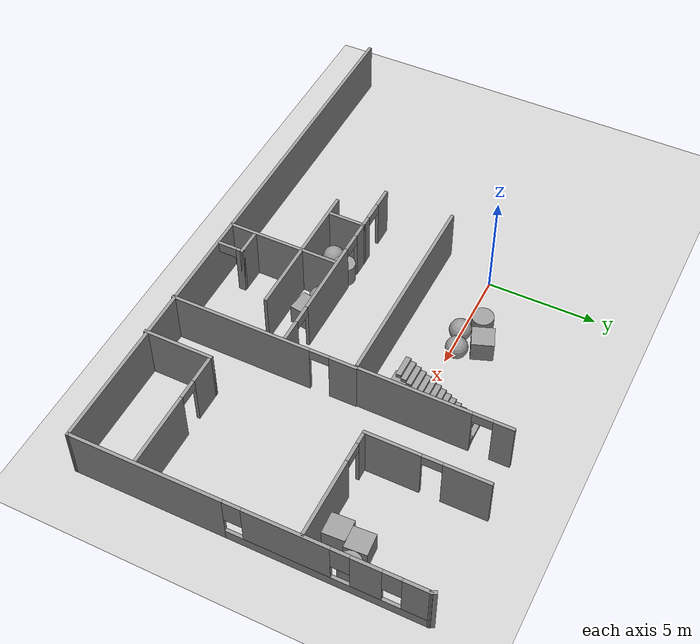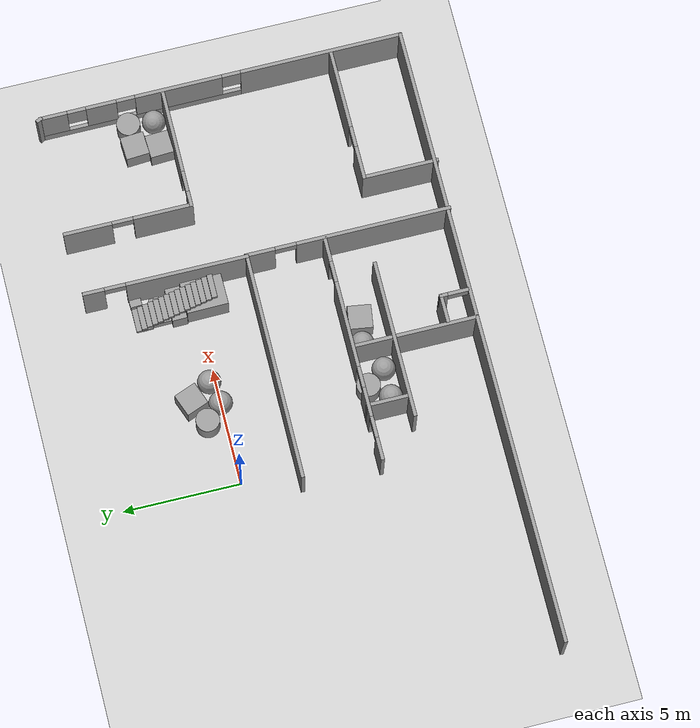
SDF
<sdf version="1.7">
 <world name="default">
  <model name="ground_plane">
   <static>1</static>
   <link name="link">
    <collision name="collision">
     <geometry><plane><normal>0 0 1</normal><size>100 100</size></plane></geometry>
     <surface>
      <contact><collide_bitmask>65535</collide_bitmask></contact>
      <friction><ode><mu>100</mu><mu2>50</mu2></ode></friction>
     </surface>
    </collision>
    <visual name="visual">
     <cast_shadows>0</cast_shadows>
     <geometry><plane><normal>0 0 1</normal><size>100 100</size></plane></geometry>
     <material>
      <script><uri>file://media/materials/scripts/gazebo.material</uri><name>Gazebo/Grey</name></script>
     </material>
    </visual>
   </link>
  </model>
  <model name="Dundler_mifflin">
   <pose>0.014796 -3.72139 0 0 -0 0</pose>
   <link name="Stairs_1">
    <visual name="Stairs_1_Visual_0">
     <pose>7.80793 6.29097 0.083333 0 -0 0</pose>
     <geometry><box><size>1 0.233333 0.166667</size></box></geometry>
     <material>
      <script><uri>file://media/materials/scripts/gazebo.material</uri><name>Gazebo/Grey</name></script>
      <ambient>1 1 1 1</ambient>
     </material>
     <meta><layer>0</layer></meta>
    </visual>
    <collision name="Stairs_1_Collision_0">
     <geometry><box><size>1 0.233333 0.166667</size></box></geometry>
     <pose>7.80793 6.29097 0.083333 0 -0 0</pose>
    </collision>
    <visual name="Stairs_1_Visual_1">
     <pose>7.80793 6.05764 0.25 0 -0 0</pose>
     <geometry><box><size>1 0.233333 0.166667</size></box></geometry>
     <material>
      <script><uri>file://media/materials/scripts/gazebo.material</uri><name>Gazebo/Grey</name></script>
      <ambient>1 1 1 1</ambient>
     </material>
     <meta><layer>0</layer></meta>
    </visual>
    <collision name="Stairs_1_Collision_1">
     <geometry><box><size>1 0.233333 0.166667</size></box></geometry>
     <pose>7.80793 6.05764 0.25 0 -0 0</pose>
    </collision>
    <visual name="Stairs_1_Visual_2">
     <pose>7.80793 5.8243 0.416667 0 -0 0</pose>
     <geometry><box><size>1 0.233333 0.166667</size></box></geometry>
     <material>
      <script><uri>file://media/materials/scripts/gazebo.material</uri><name>Gazebo/Grey</name></script>
      <ambient>1 1 1 1</ambient>
     </material>
     <meta><layer>0</layer></meta>
    </visual>
    <collision name="Stairs_1_Collision_2">
     <geometry><box><size>1 0.233333 0.166667</size></box></geometry>
     <pose>7.80793 5.8243 0.416667 0 -0 0</pose>
    </collision>
    <visual name="Stairs_1_Visual_3">
     <pose>7.80793 5.59097 0.583333 0 -0 0</pose>
     <geometry><box><size>1 0.233333 0.166667</size></box></geometry>
     <material>
      <script><uri>file://media/materials/scripts/gazebo.material</uri><name>Gazebo/Grey</name></script>
      <ambient>1 1 1 1</ambient>
     </material>
     <meta><layer>0</layer></meta>
    </visual>
    <collision name="Stairs_1_Collision_3">
     <geometry><box><size>1 0.233333 0.166667</size></box></geometry>
     <pose>7.80793 5.59097 0.583333 0 -0 0</pose>
    </collision>
    <visual name="Stairs_1_Visual_4">
     <pose>7.80793 5.35764 0.75 0 -0 0</pose>
     <geometry><box><size>1 0.233333 0.166667</size></box></geometry>
     <material>
      <script><uri>file://media/materials/scripts/gazebo.material</uri><name>Gazebo/Grey</name></script>
      <ambient>1 1 1 1</ambient>
     </material>
     <meta><layer>0</layer></meta>
    </visual>
    <collision name="Stairs_1_Collision_4">
     <geometry><box><size>1 0.233333 0.166667</size></box></geometry>
     <pose>7.80793 5.35764 0.75 0 -0 0</pose>
    </collision>
    <visual name="Stairs_1_Visual_5">
     <pose>7.80793 5.1243 0.916667 0 -0 0</pose>
     <geometry><box><size>1 0.233333 0.166667</size></box></geometry>
     <material>
      <script><uri>file://media/materials/scripts/gazebo.material</uri><name>Gazebo/Grey</name></script>
      <ambient>1 1 1 1</ambient>
     </material>
     <meta><layer>0</layer></meta>
    </visual>
    <collision name="Stairs_1_Collision_5">
     <geometry><box><size>1 0.233333 0.166667</size></box></geometry>
     <pose>7.80793 5.1243 0.916667 0 -0 0</pose>
    </collision>
    <visual name="Stairs_1_Visual_6">
     <pose>7.80793 4.89097 1.08333 0 -0 0</pose>
     <geometry><box><size>1 0.233333 0.166667</size></box></geometry>
     <material>
      <script><uri>file://media/materials/scripts/gazebo.material</uri><name>Gazebo/Grey</name></script>
      <ambient>1 1 1 1</ambient>
     </material>
     <meta><layer>0</layer></meta>
    </visual>
    <collision name="Stairs_1_Collision_6">
     <geometry><box><size>1 0.233333 0.166667</size></box></geometry>
     <pose>7.80793 4.89097 1.08333 0 -0 0</pose>
    </collision>
    <visual name="Stairs_1_Visual_7">
     <pose>7.80793 4.65763 1.25 0 -0 0</pose>
     <geometry><box><size>1 0.233333 0.166667</size></box></geometry>
     <material>
      <script><uri>file://media/materials/scripts/gazebo.material</uri><name>Gazebo/Grey</name></script>
      <ambient>1 1 1 1</ambient>
     </material>
     <meta><layer>0</layer></meta>
    </visual>
    <collision name="Stairs_1_Collision_7">
     <geometry><box><size>1 0.233333 0.166667</size></box></geometry>
     <pose>7.80793 4.65763 1.25 0 -0 0</pose>
    </collision>
    <visual name="Stairs_1_Visual_8">
     <pose>7.80793 4.4243 1.41667 0 -0 0</pose>
     <geometry><box><size>1 0.233333 0.166667</size></box></geometry>
     <material>
      <script><uri>file://media/materials/scripts/gazebo.material</uri><name>Gazebo/Grey</name></script>
      <ambient>1 1 1 1</ambient>
     </material>
     <meta><layer>0</layer></meta>
    </visual>
    <collision name="Stairs_1_Collision_8">
     <geometry><box><size>1 0.233333 0.166667</size></box></geometry>
     <pose>7.80793 4.4243 1.41667 0 -0 0</pose>
    </collision>
    <visual name="Stairs_1_Visual_9">
     <pose>7.80793 4.19097 1.58333 0 -0 0</pose>
     <geometry><box><size>1 0.233333 0.166667</size></box></geometry>
     <material>
      <script><uri>file://media/materials/scripts/gazebo.material</uri><name>Gazebo/Grey</name></script>
      <ambient>1 1 1 1</ambient>
     </material>
     <meta><layer>0</layer></meta>
    </visual>
    <collision name="Stairs_1_Collision_9">
     <geometry><box><size>1 0.233333 0.166667</size></box></geometry>
     <pose>7.80793 4.19097 1.58333 0 -0 0</pose>
    </collision>
    <visual name="Stairs_1_Visual_10">
     <pose>7.80793 3.95763 1.75 0 -0 0</pose>
     <geometry><box><size>1 0.233333 0.166667</size></box></geometry>
     <material>
      <script><uri>file://media/materials/scripts/gazebo.material</uri><name>Gazebo/Grey</name></script>
      <ambient>1 1 1 1</ambient>
     </material>
     <meta><layer>0</layer></meta>
    </visual>
    <collision name="Stairs_1_Collision_10">
     <geometry><box><size>1 0.233333 0.166667</size></box></geometry>
     <pose>7.80793 3.95763 1.75 0 -0 0</pose>
    </collision>
    <visual name="Stairs_1_Visual_11">
     <pose>7.80793 3.7243 1.91667 0 -0 0</pose>
     <geometry><box><size>1 0.233333 0.166667</size></box></geometry>
     <material>
      <script><uri>file://media/materials/scripts/gazebo.material</uri><name>Gazebo/Grey</name></script>
      <ambient>1 1 1 1</ambient>
     </material>
     <meta><layer>0</layer></meta>
    </visual>
    <collision name="Stairs_1_Collision_11">
     <geometry><box><size>1 0.233333 0.166667</size></box></geometry>
     <pose>7.80793 3.7243 1.91667 0 -0 0</pose>
    </collision>
    <visual name="Stairs_1_Visual_12">
     <pose>7.80793 3.49097 2.08333 0 -0 0</pose>
     <geometry><box><size>1 0.233333 0.166667</size></box></geometry>
     <material>
      <script><uri>file://media/materials/scripts/gazebo.material</uri><name>Gazebo/Grey</name></script>
      <ambient>1 1 1 1</ambient>
     </material>
     <meta><layer>0</layer></meta>
    </visual>
    <collision name="Stairs_1_Collision_12">
     <geometry><box><size>1 0.233333 0.166667</size></box></geometry>
     <pose>7.80793 3.49097 2.08333 0 -0 0</pose>
    </collision>
    <visual name="Stairs_1_Visual_13">
     <pose>7.80793 3.25764 2.25 0 -0 0</pose>
     <geometry><box><size>1 0.233333 0.166667</size></box></geometry>
     <material>
      <script><uri>file://media/materials/scripts/gazebo.material</uri><name>Gazebo/Grey</name></script>
      <ambient>1 1 1 1</ambient>
     </material>
     <meta><layer>0</layer></meta>
    </visual>
    <collision name="Stairs_1_Collision_13">
     <geometry><box><size>1 0.233333 0.166667</size></box></geometry>
     <pose>7.80793 3.25764 2.25 0 -0 0</pose>
    </collision>
    <visual name="Stairs_1_Visual_14">
     <pose>7.80793 3.0243 2.41667 0 -0 0</pose>
     <geometry><box><size>1 0.233333 0.166667</size></box></geometry>
     <material>
      <script><uri>file://media/materials/scripts/gazebo.material</uri><name>Gazebo/Grey</name></script>
      <ambient>1 1 1 1</ambient>
     </material>
     <meta><layer>0</layer></meta>
    </visual>
    <collision name="Stairs_1_Collision_14">
     <geometry><box><size>1 0.233333 0.166667</size></box></geometry>
     <pose>7.80793 3.0243 2.41667 0 -0 0</pose>
    </collision>
   </link>
   <link name="Wall_16">
    <collision name="Wall_16_Collision">
     <geometry><box><size>9.72356 0.15 2.5</size></box></geometry>
     <pose>0 0 1.25 0 -0 0</pose>
    </collision>
    <visual name="Wall_16_Visual">
     <pose>0 0 1.25 0 -0 0</pose>
     <geometry><box><size>9.72356 0.15 2.5</size></box></geometry>
     <material>
      <script><uri>file://media/materials/scripts/gazebo.material</uri><name>Gazebo/Grey</name></script>
      <ambient>1 1 1 1</ambient>
     </material>
     <meta><layer>0</layer></meta>
    </visual>
    <pose>3.91536 1.33297 0 0 -0 -0.001938</pose>
   </link>
   <link name="Wall_17">
    <pose>8.71536 4.75797 0 0 -0 1.56694</pose>
    <visual name="Wall_17_Visual_0">
     <pose>-0.909005 0 1.25 0 -0 0</pose>
     <geometry><box><size>5.20056 0.15 2.5</size></box></geometry>
     <material>
      <script><uri>file://media/materials/scripts/gazebo.material</uri><name>Gazebo/Grey</name></script>
      <ambient>1 1 1 1</ambient>
     </material>
     <meta><layer>0</layer></meta>
    </visual>
    <collision name="Wall_17_Collision_0">
     <geometry><box><size>5.20056 0.15 2.5</size></box></geometry>
     <pose>-0.909005 0 1.25 0 -0 0</pose>
    </collision>
    <visual name="Wall_17_Visual_1">
     <pose>3.05028 0 1.25 0 -0 0</pose>
     <geometry><box><size>0.91801 0.15 2.5</size></box></geometry>
     <material>
      <script><uri>file://media/materials/scripts/gazebo.material</uri><name>Gazebo/Grey</name></script>
      <ambient>1 1 1 1</ambient>
     </material>
     <meta><layer>0</layer></meta>
    </visual>
    <collision name="Wall_17_Collision_1">
     <geometry><box><size>0.91801 0.15 2.5</size></box></geometry>
     <pose>3.05028 0 1.25 0 -0 0</pose>
    </collision>
    <visual name="Wall_17_Visual_2">
     <pose>2.14127 0 2.25 0 -0 0</pose>
     <geometry><box><size>0.9 0.15 0.5</size></box></geometry>
     <material>
      <script><uri>file://media/materials/scripts/gazebo.material</uri><name>Gazebo/Grey</name></script>
      <ambient>1 1 1 1</ambient>
     </material>
     <meta><layer>0</layer></meta>
    </visual>
    <collision name="Wall_17_Collision_2">
     <geometry><box><size>0.9 0.15 0.5</size></box></geometry>
     <pose>2.14127 0 2.25 0 -0 0</pose>
    </collision>
   </link>
   <link name="Wall_19">
    <pose>8.74259 -2.97631 0 0 -0 -1.5708</pose>
    <visual name="Wall_19_Visual_0">
     <pose>-3.73996 0 1.25 0 -0 0</pose>
     <geometry><box><size>1.27008 0.15 2.5</size></box></geometry>
     <material>
      <script><uri>file://media/materials/scripts/gazebo.material</uri><name>Gazebo/Grey</name></script>
      <ambient>1 1 1 1</ambient>
     </material>
     <meta><layer>0</layer></meta>
    </visual>
    <collision name="Wall_19_Collision_0">
     <geometry><box><size>1.27008 0.15 2.5</size></box></geometry>
     <pose>-3.73996 0 1.25 0 -0 0</pose>
    </collision>
    <visual name="Wall_19_Visual_1">
     <pose>1.08504 0 1.25 0 -0 0</pose>
     <geometry><box><size>6.57992 0.15 2.5</size></box></geometry>
     <material>
      <script><uri>file://media/materials/scripts/gazebo.material</uri><name>Gazebo/Grey</name></script>
      <ambient>1 1 1 1</ambient>
     </material>
     <meta><layer>0</layer></meta>
    </visual>
    <collision name="Wall_19_Collision_1">
     <geometry><box><size>6.57992 0.15 2.5</size></box></geometry>
     <pose>1.08504 0 1.25 0 -0 0</pose>
    </collision>
    <visual name="Wall_19_Visual_2">
     <pose>-2.65492 0 2.25 0 -0 0</pose>
     <geometry><box><size>0.9 0.15 0.5</size></box></geometry>
     <material>
      <script><uri>file://media/materials/scripts/gazebo.material</uri><name>Gazebo/Grey</name></script>
      <ambient>1 1 1 1</ambient>
     </material>
     <meta><layer>0</layer></meta>
    </visual>
    <collision name="Wall_19_Collision_2">
     <geometry><box><size>0.9 0.15 0.5</size></box></geometry>
     <pose>-2.65492 0 2.25 0 -0 0</pose>
    </collision>
   </link>
   <link name="Wall_21">
    <pose>3.86393 -1.97588 0 0 -0 0</pose>
    <visual name="Wall_21_Visual_0">
     <pose>-4.38876 0 1.25 0 -0 0</pose>
     <geometry><box><size>0.972488 0.15 2.5</size></box></geometry>
     <material>
      <script><uri>file://media/materials/scripts/gazebo.material</uri><name>Gazebo/Grey</name></script>
      <ambient>1 1 1 1</ambient>
     </material>
     <meta><layer>0</layer></meta>
    </visual>
    <collision name="Wall_21_Collision_0">
     <geometry><box><size>0.972488 0.15 2.5</size></box></geometry>
     <pose>-4.38876 0 1.25 0 -0 0</pose>
    </collision>
    <visual name="Wall_21_Visual_1">
     <pose>-2.36833 0 1.25 0 -0 0</pose>
     <geometry><box><size>1.26836 0.15 2.5</size></box></geometry>
     <material>
      <script><uri>file://media/materials/scripts/gazebo.material</uri><name>Gazebo/Grey</name></script>
      <ambient>1 1 1 1</ambient>
     </material>
     <meta><layer>0</layer></meta>
    </visual>
    <collision name="Wall_21_Collision_1">
     <geometry><box><size>1.26836 0.15 2.5</size></box></geometry>
     <pose>-2.36833 0 1.25 0 -0 0</pose>
    </collision>
    <visual name="Wall_21_Visual_2">
     <pose>1.02891 0 1.25 0 -0 0</pose>
     <geometry><box><size>3.72612 0.15 2.5</size></box></geometry>
     <material>
      <script><uri>file://media/materials/scripts/gazebo.material</uri><name>Gazebo/Grey</name></script>
      <ambient>1 1 1 1</ambient>
     </material>
     <meta><layer>0</layer></meta>
    </visual>
    <collision name="Wall_21_Collision_2">
     <geometry><box><size>3.72612 0.15 2.5</size></box></geometry>
     <pose>1.02891 0 1.25 0 -0 0</pose>
    </collision>
    <visual name="Wall_21_Visual_3">
     <pose>4.33349 0 1.25 0 -0 0</pose>
     <geometry><box><size>1.08303 0.15 2.5</size></box></geometry>
     <material>
      <script><uri>file://media/materials/scripts/gazebo.material</uri><name>Gazebo/Grey</name></script>
      <ambient>1 1 1 1</ambient>
     </material>
     <meta><layer>0</layer></meta>
    </visual>
    <collision name="Wall_21_Collision_3">
     <geometry><box><size>1.08303 0.15 2.5</size></box></geometry>
     <pose>4.33349 0 1.25 0 -0 0</pose>
    </collision>
    <visual name="Wall_21_Visual_4">
     <pose>-3.45251 0 2.25 0 -0 0</pose>
     <geometry><box><size>0.9 0.15 0.5</size></box></geometry>
     <material>
      <script><uri>file://media/materials/scripts/gazebo.material</uri><name>Gazebo/Grey</name></script>
      <ambient>1 1 1 1</ambient>
     </material>
     <meta><layer>0</layer></meta>
    </visual>
    <collision name="Wall_21_Collision_4">
     <geometry><box><size>0.9 0.15 0.5</size></box></geometry>
     <pose>-3.45251 0 2.25 0 -0 0</pose>
    </collision>
    <visual name="Wall_21_Visual_5">
     <pose>-1.28415 0 2.25 0 -0 0</pose>
     <geometry><box><size>0.9 0.15 0.5</size></box></geometry>
     <material>
      <script><uri>file://media/materials/scripts/gazebo.material</uri><name>Gazebo/Grey</name></script>
      <ambient>1 1 1 1</ambient>
     </material>
     <meta><layer>0</layer></meta>
    </visual>
    <collision name="Wall_21_Collision_5">
     <geometry><box><size>0.9 0.15 0.5</size></box></geometry>
     <pose>-1.28415 0 2.25 0 -0 0</pose>
    </collision>
    <visual name="Wall_21_Visual_6">
     <pose>3.34197 0 2.25 0 -0 0</pose>
     <geometry><box><size>0.9 0.15 0.5</size></box></geometry>
     <material>
      <script><uri>file://media/materials/scripts/gazebo.material</uri><name>Gazebo/Grey</name></script>
      <ambient>1 1 1 1</ambient>
     </material>
     <meta><layer>0</layer></meta>
    </visual>
    <collision name="Wall_21_Collision_6">
     <geometry><box><size>0.9 0.15 0.5</size></box></geometry>
     <pose>3.34197 0 2.25 0 -0 0</pose>
    </collision>
   </link>
   <link name="Wall_23">
    <collision name="Wall_23_Collision">
     <geometry><box><size>5.25 0.15 2.5</size></box></geometry>
     <pose>0 0 1.25 0 -0 0</pose>
    </collision>
    <visual name="Wall_23_Visual">
     <pose>0 0 1.25 0 -0 0</pose>
     <geometry><box><size>5.25 0.15 2.5</size></box></geometry>
     <material>
      <script><uri>file://media/materials/scripts/gazebo.material</uri><name>Gazebo/Grey</name></script>
      <ambient>1 1 1 1</ambient>
     </material>
     <meta><layer>0</layer></meta>
    </visual>
    <pose>3.92136 -4.66467 0 0 -0 -1.5708</pose>
   </link>
   <link name="Wall_25">
    <collision name="Wall_25_Collision">
     <geometry><box><size>6.75 0.15 2.5</size></box></geometry>
     <pose>0 0 1.25 0 -0 0</pose>
    </collision>
    <visual name="Wall_25_Visual">
     <pose>0 0 1.25 0 -0 0</pose>
     <geometry><box><size>6.75 0.15 2.5</size></box></geometry>
     <material>
      <script><uri>file://media/materials/scripts/gazebo.material</uri><name>Gazebo/Grey</name></script>
      <ambient>1 1 1 1</ambient>
     </material>
     <meta><layer>0</layer></meta>
    </visual>
    <pose>3.82116 -3.71068 0 0 -0 0</pose>
   </link>
   <link name="Wall_27">
    <pose>11.4275 5.71132 0 0 -0 -1.5708</pose>
    <visual name="Wall_27_Visual_0">
     <pose>-1.71906 0 1.25 0 -0 0</pose>
     <geometry><box><size>2.06188 0.15 2.5</size></box></geometry>
     <material>
      <script><uri>file://media/materials/scripts/gazebo.material</uri><name>Gazebo/Grey</name></script>
      <ambient>1 1 1 1</ambient>
     </material>
     <meta><layer>0</layer></meta>
    </visual>
    <collision name="Wall_27_Collision_0">
     <geometry><box><size>2.06188 0.15 2.5</size></box></geometry>
     <pose>-1.71906 0 1.25 0 -0 0</pose>
    </collision>
    <visual name="Wall_27_Visual_1">
     <pose>1.48094 0 1.25 0 -0 0</pose>
     <geometry><box><size>2.53812 0.15 2.5</size></box></geometry>
     <material>
      <script><uri>file://media/materials/scripts/gazebo.material</uri><name>Gazebo/Grey</name></script>
      <ambient>1 1 1 1</ambient>
     </material>
     <meta><layer>0</layer></meta>
    </visual>
    <collision name="Wall_27_Collision_1">
     <geometry><box><size>2.53812 0.15 2.5</size></box></geometry>
     <pose>1.48094 0 1.25 0 -0 0</pose>
    </collision>
    <visual name="Wall_27_Visual_2">
     <pose>-0.238121 0 2.25 0 -0 0</pose>
     <geometry><box><size>0.9 0.15 0.5</size></box></geometry>
     <material>
      <script><uri>file://media/materials/scripts/gazebo.material</uri><name>Gazebo/Grey</name></script>
      <ambient>1 1 1 1</ambient>
     </material>
     <meta><layer>0</layer></meta>
    </visual>
    <collision name="Wall_27_Collision_2">
     <geometry><box><size>0.9 0.15 0.5</size></box></geometry>
     <pose>-0.238121 0 2.25 0 -0 0</pose>
    </collision>
   </link>
   <link name="Wall_28">
    <pose>13.9775 3.03632 0 0 -0 0</pose>
    <visual name="Wall_28_Visual_0">
     <pose>-2.28737 0 1.25 0 -0 0</pose>
     <geometry><box><size>0.675255 0.15 2.5</size></box></geometry>
     <material>
      <script><uri>file://media/materials/scripts/gazebo.material</uri><name>Gazebo/Grey</name></script>
      <ambient>1 1 1 1</ambient>
     </material>
     <meta><layer>0</layer></meta>
    </visual>
    <collision name="Wall_28_Collision_0">
     <geometry><box><size>0.675255 0.15 2.5</size></box></geometry>
     <pose>-2.28737 0 1.25 0 -0 0</pose>
    </collision>
    <visual name="Wall_28_Visual_1">
     <pose>0.787627 0 1.25 0 -0 0</pose>
     <geometry><box><size>3.67475 0.15 2.5</size></box></geometry>
     <material>
      <script><uri>file://media/materials/scripts/gazebo.material</uri><name>Gazebo/Grey</name></script>
      <ambient>1 1 1 1</ambient>
     </material>
     <meta><layer>0</layer></meta>
    </visual>
    <collision name="Wall_28_Collision_1">
     <geometry><box><size>3.67475 0.15 2.5</size></box></geometry>
     <pose>0.787627 0 1.25 0 -0 0</pose>
    </collision>
    <visual name="Wall_28_Visual_2">
     <pose>-1.49975 0 2.25 0 -0 0</pose>
     <geometry><box><size>0.9 0.15 0.5</size></box></geometry>
     <material>
      <script><uri>file://media/materials/scripts/gazebo.material</uri><name>Gazebo/Grey</name></script>
      <ambient>1 1 1 1</ambient>
     </material>
     <meta><layer>0</layer></meta>
    </visual>
    <collision name="Wall_28_Collision_2">
     <geometry><box><size>0.9 0.15 0.5</size></box></geometry>
     <pose>-1.49975 0 2.25 0 -0 0</pose>
    </collision>
   </link>
   <link name="Wall_32">
    <collision name="Wall_32_Collision">
     <geometry><box><size>1.75 0.15 2.5</size></box></geometry>
     <pose>0 0 1.25 0 -0 0</pose>
    </collision>
    <visual name="Wall_32_Visual">
     <pose>0 0 1.25 0 -0 0</pose>
     <geometry><box><size>1.75 0.15 2.5</size></box></geometry>
     <material>
      <script><uri>file://media/materials/scripts/gazebo.material</uri><name>Gazebo/Grey</name></script>
      <ambient>1 1 1 1</ambient>
     </material>
     <meta><layer>0</layer></meta>
    </visual>
    <pose>1.36125 -2.76578 0 0 -0 -1.5708</pose>
   </link>
   <link name="Wall_40">
    <collision name="Wall_40_Collision">
     <geometry><box><size>3.25 0.15 2.5</size></box></geometry>
     <pose>0 0 1.25 0 -0 0</pose>
    </collision>
    <visual name="Wall_40_Visual">
     <pose>0 0 1.25 0 -0 0</pose>
     <geometry><box><size>3.25 0.15 2.5</size></box></geometry>
     <material>
      <script><uri>file://media/materials/scripts/gazebo.material</uri><name>Gazebo/Grey</name></script>
      <ambient>1 1 1 1</ambient>
     </material>
     <meta><layer>0</layer></meta>
    </visual>
    <pose>10.8761 -5.75105 0 0 -0 1.5708</pose>
   </link>
   <link name="Wall_41">
    <pose>13.6761 -4.20105 0 0 -0 0</pose>
    <visual name="Wall_41_Visual_0">
     <pose>-2.15225 0 1.25 0 -0 0</pose>
     <geometry><box><size>1.4455 0.15 2.5</size></box></geometry>
     <material>
      <script><uri>file://media/materials/scripts/gazebo.material</uri><name>Gazebo/Grey</name></script>
      <ambient>1 1 1 1</ambient>
     </material>
     <meta><layer>0</layer></meta>
    </visual>
    <collision name="Wall_41_Collision_0">
     <geometry><box><size>1.4455 0.15 2.5</size></box></geometry>
     <pose>-2.15225 0 1.25 0 -0 0</pose>
    </collision>
    <visual name="Wall_41_Visual_1">
     <pose>1.17275 0 1.25 0 -0 0</pose>
     <geometry><box><size>3.4045 0.15 2.5</size></box></geometry>
     <material>
      <script><uri>file://media/materials/scripts/gazebo.material</uri><name>Gazebo/Grey</name></script>
      <ambient>1 1 1 1</ambient>
     </material>
     <meta><layer>0</layer></meta>
    </visual>
    <collision name="Wall_41_Collision_1">
     <geometry><box><size>3.4045 0.15 2.5</size></box></geometry>
     <pose>1.17275 0 1.25 0 -0 0</pose>
    </collision>
    <visual name="Wall_41_Visual_2">
     <pose>-0.9795 0 2.25 0 -0 0</pose>
     <geometry><box><size>0.9 0.15 0.5</size></box></geometry>
     <material>
      <script><uri>file://media/materials/scripts/gazebo.material</uri><name>Gazebo/Grey</name></script>
      <ambient>1 1 1 1</ambient>
     </material>
     <meta><layer>0</layer></meta>
    </visual>
    <collision name="Wall_41_Collision_2">
     <geometry><box><size>0.9 0.15 0.5</size></box></geometry>
     <pose>-0.9795 0 2.25 0 -0 0</pose>
    </collision>
   </link>
   <link name="Wall_43">
    <collision name="Wall_43_Collision">
     <geometry><box><size>1.25 0.15 2.5</size></box></geometry>
     <pose>0 0 1.25 0 -0 0</pose>
    </collision>
    <visual name="Wall_43_Visual">
     <pose>0 0 1.25 0 -0 0</pose>
     <geometry><box><size>1.25 0.15 2.5</size></box></geometry>
     <material>
      <script><uri>file://media/materials/scripts/gazebo.material</uri><name>Gazebo/Grey</name></script>
      <ambient>1 1 1 1</ambient>
     </material>
     <meta><layer>0</layer></meta>
    </visual>
    <pose>4.58911 -6.00647 0 0 -0 0</pose>
   </link>
   <link name="Wall_44">
    <pose>5.13911 -6.55647 0 0 -0 -1.5708</pose>
    <visual name="Wall_44_Visual_0">
     <pose>-0.4484 0 1.25 0 -0 0</pose>
     <geometry><box><size>0.3532 0.15 2.5</size></box></geometry>
     <material>
      <script><uri>file://media/materials/scripts/gazebo.material</uri><name>Gazebo/Grey</name></script>
      <ambient>1 1 1 1</ambient>
     </material>
     <meta><layer>0</layer></meta>
    </visual>
    <collision name="Wall_44_Collision_0">
     <geometry><box><size>0.3532 0.15 2.5</size></box></geometry>
     <pose>-0.4484 0 1.25 0 -0 0</pose>
    </collision>
    <visual name="Wall_44_Visual_1">
     <pose>0.1766 0 2.25 0 -0 0</pose>
     <geometry><box><size>0.8968 0.15 0.5</size></box></geometry>
     <material>
      <script><uri>file://media/materials/scripts/gazebo.material</uri><name>Gazebo/Grey</name></script>
      <ambient>1 1 1 1</ambient>
     </material>
     <meta><layer>0</layer></meta>
    </visual>
    <collision name="Wall_44_Collision_1">
     <geometry><box><size>0.8968 0.15 0.5</size></box></geometry>
     <pose>0.1766 0 2.25 0 -0 0</pose>
    </collision>
   </link>
   <link name="Wall_5">
    <collision name="Wall_5_Collision">
     <geometry><box><size>26.75 0.15 2.5</size></box></geometry>
     <pose>0 0 1.25 0 -0 0</pose>
    </collision>
    <visual name="Wall_5_Visual">
     <pose>0 0 1.25 0 -0 0</pose>
     <geometry><box><size>26.75 0.15 2.5</size></box></geometry>
     <material>
      <script><uri>file://media/materials/scripts/gazebo.material</uri><name>Gazebo/Grey</name></script>
      <ambient>1 1 1 1</ambient>
     </material>
     <meta><layer>0</layer></meta>
    </visual>
    <pose>3.33038 -7.21441 0 0 -0 0</pose>
   </link>
   <link name="Wall_6">
    <pose>16.6077 0.513998 0 0 -0 1.57373</pose>
    <visual name="Wall_6_Visual_0">
     <pose>-4.31589 0 1.25 0 -0 0</pose>
     <geometry><box><size>6.97527 0.15 2.5</size></box></geometry>
     <material>
      <script><uri>file://media/materials/scripts/gazebo.material</uri><name>Gazebo/Grey</name></script>
      <ambient>1 1 1 1</ambient>
     </material>
     <meta><layer>0</layer></meta>
    </visual>
    <collision name="Wall_6_Collision_0">
     <geometry><box><size>6.97527 0.15 2.5</size></box></geometry>
     <pose>-4.31589 0 1.25 0 -0 0</pose>
    </collision>
    <visual name="Wall_6_Visual_1">
     <pose>3.48764 0 0.25 0 -0 0</pose>
     <geometry><box><size>8.63179 0.15 0.5</size></box></geometry>
     <material>
      <script><uri>file://media/materials/scripts/gazebo.material</uri><name>Gazebo/Grey</name></script>
      <ambient>1 1 1 1</ambient>
     </material>
     <meta><layer>0</layer></meta>
    </visual>
    <collision name="Wall_6_Collision_1">
     <geometry><box><size>8.63179 0.15 0.5</size></box></geometry>
     <pose>3.48764 0 0.25 0 -0 0</pose>
    </collision>
    <visual name="Wall_6_Visual_2">
     <pose>1.83749 0 1.5 0 -0 0</pose>
     <geometry><box><size>3.73148 0.15 2</size></box></geometry>
     <material>
      <script><uri>file://media/materials/scripts/gazebo.material</uri><name>Gazebo/Grey</name></script>
      <ambient>1 1 1 1</ambient>
     </material>
     <meta><layer>0</layer></meta>
    </visual>
    <collision name="Wall_6_Collision_2">
     <geometry><box><size>3.73148 0.15 2</size></box></geometry>
     <pose>1.83749 0 1.5 0 -0 0</pose>
    </collision>
    <visual name="Wall_6_Visual_3">
     <pose>5.15477 0 1.5 0 -0 0</pose>
     <geometry><box><size>1.30309 0.15 2</size></box></geometry>
     <material>
      <script><uri>file://media/materials/scripts/gazebo.material</uri><name>Gazebo/Grey</name></script>
      <ambient>1 1 1 1</ambient>
     </material>
     <meta><layer>0</layer></meta>
    </visual>
    <collision name="Wall_6_Collision_3">
     <geometry><box><size>1.30309 0.15 2</size></box></geometry>
     <pose>5.15477 0 1.5 0 -0 0</pose>
    </collision>
    <visual name="Wall_6_Visual_4">
     <pose>7.20492 0 1.5 0 -0 0</pose>
     <geometry><box><size>1.19722 0.15 2</size></box></geometry>
     <material>
      <script><uri>file://media/materials/scripts/gazebo.material</uri><name>Gazebo/Grey</name></script>
      <ambient>1 1 1 1</ambient>
     </material>
     <meta><layer>0</layer></meta>
    </visual>
    <collision name="Wall_6_Collision_4">
     <geometry><box><size>1.19722 0.15 2</size></box></geometry>
     <pose>7.20492 0 1.5 0 -0 0</pose>
    </collision>
    <visual name="Wall_6_Visual_5">
     <pose>-0.428255 0 1.9 0 -0 0</pose>
     <geometry><box><size>0.8 0.15 1.2</size></box></geometry>
     <material>
      <script><uri>file://media/materials/scripts/gazebo.material</uri><name>Gazebo/Grey</name></script>
      <ambient>1 1 1 1</ambient>
     </material>
     <meta><layer>0</layer></meta>
    </visual>
    <collision name="Wall_6_Collision_5">
     <geometry><box><size>0.8 0.15 1.2</size></box></geometry>
     <pose>-0.428255 0 1.9 0 -0 0</pose>
    </collision>
    <visual name="Wall_6_Visual_6">
     <pose>4.10323 0 1.9 0 -0 0</pose>
     <geometry><box><size>0.8 0.15 1.2</size></box></geometry>
     <material>
      <script><uri>file://media/materials/scripts/gazebo.material</uri><name>Gazebo/Grey</name></script>
      <ambient>1 1 1 1</ambient>
     </material>
     <meta><layer>0</layer></meta>
    </visual>
    <collision name="Wall_6_Collision_6">
     <geometry><box><size>0.8 0.15 1.2</size></box></geometry>
     <pose>4.10323 0 1.9 0 -0 0</pose>
    </collision>
    <visual name="Wall_6_Visual_7">
     <pose>6.20631 0 1.9 0 -0 0</pose>
     <geometry><box><size>0.8 0.15 1.2</size></box></geometry>
     <material>
      <script><uri>file://media/materials/scripts/gazebo.material</uri><name>Gazebo/Grey</name></script>
      <ambient>1 1 1 1</ambient>
     </material>
     <meta><layer>0</layer></meta>
    </visual>
    <collision name="Wall_6_Collision_7">
     <geometry><box><size>0.8 0.15 1.2</size></box></geometry>
     <pose>6.20631 0 1.9 0 -0 0</pose>
    </collision>
   </link>
   <link name="Wall_7">
    <collision name="Wall_7_Collision">
     <geometry><box><size>0.294113 0.15 2.5</size></box></geometry>
     <pose>0 0 1.25 0 -0 0</pose>
    </collision>
    <visual name="Wall_7_Visual">
     <pose>0 0 1.25 0 -0 0</pose>
     <geometry><box><size>0.294113 0.15 2.5</size></box></geometry>
     <material>
      <script><uri>file://media/materials/scripts/gazebo.material</uri><name>Gazebo/Grey</name></script>
      <ambient>1 1 1 1</ambient>
     </material>
     <meta><layer>0</layer></meta>
    </visual>
    <pose>16.5538 8.30734 0 0 -0 2.01915</pose>
   </link>
   <static>1</static>
  </model>
  <model name="unit_box">
   <pose>8.24248 1.6308 0.212044 3.14159 -0 -0.149507</pose>
   <link name="link">
    <inertial>
     <mass>1</mass>
     <inertia>
      <ixx>0.166667</ixx>
      <ixy>0</ixy>
      <ixz>0</ixz>
      <iyy>0.166667</iyy>
      <iyz>0</iyz>
      <izz>0.166667</izz>
     </inertia>
    </inertial>
    <collision name="collision"><geometry><box><size>0.49341 0.622634 0.424088</size></box></geometry></collision>
    <visual name="visual">
     <geometry><box><size>0.49341 0.622634 0.424088</size></box></geometry>
     <material>
      <script><name>Gazebo/Grey</name><uri>file://media/materials/scripts/gazebo.material</uri></script>
     </material>
    </visual>
   </link>
  </model>
  <model name="unit_box_clone">
   <pose>8.49218 2.45591 0.212045 0 2e-06 1.60776</pose>
   <link name="link">
    <inertial>
     <mass>1</mass>
     <inertia>
      <ixx>0.166667</ixx>
      <ixy>0</ixy>
      <ixz>0</ixz>
      <iyy>0.166667</iyy>
      <iyz>0</iyz>
      <izz>0.166667</izz>
     </inertia>
    </inertial>
    <collision name="collision"><geometry><box><size>0.49341 0.317012 0.424088</size></box></geometry></collision>
    <visual name="visual">
     <geometry><box><size>0.49341 0.317012 0.424088</size></box></geometry>
     <material>
      <script><name>Gazebo/Grey</name><uri>file://media/materials/scripts/gazebo.material</uri></script>
     </material>
    </visual>
   </link>
  </model>
  <model name="unit_box_clone_0">
   <pose>7.62754 1.55968 0.212044 0 -0 0.013551</pose>
   <link name="link">
    <inertial>
     <mass>1</mass>
     <inertia>
      <ixx>0.166667</ixx>
      <ixy>0</ixy>
      <ixz>0</ixz>
      <iyy>0.166667</iyy>
      <iyz>0</iyz>
      <izz>0.166667</izz>
     </inertia>
    </inertial>
    <collision name="collision"><geometry><box><size>0.49341 0.782876 0.424088</size></box></geometry></collision>
    <visual name="visual">
     <geometry><box><size>0.49341 0.782876 0.424088</size></box></geometry>
     <material>
      <script><name>Gazebo/Grey</name><uri>file://media/materials/scripts/gazebo.material</uri></script>
     </material>
    </visual>
   </link>
  </model>
  <model name="unit_box_clone_1">
   <pose>7.94716 -0.365053 0.658093 -3.14159 -0 0.012227</pose>
   <link name="link">
    <inertial>
     <mass>1</mass>
     <inertia>
      <ixx>0.166667</ixx>
      <ixy>0</ixy>
      <ixz>0</ixz>
      <iyy>0.166667</iyy>
      <iyz>0</iyz>
      <izz>0.166667</izz>
     </inertia>
    </inertial>
    <collision name="collision"><geometry><box><size>1.33773 1.75524 1.3162</size></box></geometry></collision>
    <visual name="visual">
     <geometry><box><size>1.33773 1.75524 1.3162</size></box></geometry>
     <material>
      <script><name>Gazebo/Grey</name><uri>file://media/materials/scripts/gazebo.material</uri></script>
     </material>
    </visual>
   </link>
  </model>
  <model name="unit_box_clone_1_clone">
   <pose>7.90888 0.85148 0.473526 -3.14159 -0 -1.55857</pose>
   <link name="link">
    <inertial>
     <mass>1</mass>
     <inertia>
      <ixx>0.166667</ixx>
      <ixy>0</ixy>
      <ixz>0</ixz>
      <iyy>0.166667</iyy>
      <iyz>0</iyz>
      <izz>0.166667</izz>
     </inertia>
    </inertial>
    <collision name="collision"><geometry><box><size>0.63268 1.41502 0.947052</size></box></geometry></collision>
    <visual name="visual">
     <geometry><box><size>0.63268 1.41502 0.947052</size></box></geometry>
     <material>
      <script><name>Gazebo/Grey</name><uri>file://media/materials/scripts/gazebo.material</uri></script>
     </material>
    </visual>
   </link>
  </model>
  <model name="unit_sphere_6">
   <pose>4.41575 0.27768 0.5 0.02851 0.034543 0.153751</pose>
   <link name="link">
    <inertial>
     <mass>1</mass>
     <inertia><ixx>0.1</ixx><ixy>0</ixy><ixz>0</ixz><iyy>0.1</iyy><iyz>0</iyz><izz>0.1</izz></inertia>
    </inertial>
    <collision name="collision"><geometry><sphere><radius>0.5</radius></sphere></geometry></collision>
    <visual name="visual">
     <geometry><sphere><radius>0.5</radius></sphere></geometry>
     <material>
      <script><name>Gazebo/Grey</name><uri>file://media/materials/scripts/gazebo.material</uri></script>
     </material>
    </visual>
   </link>
  </model>
  <model name="unit_cylinder_6">
   <pose>2.72119 0.740799 0.499999 0 -0 0.061122</pose>
   <link name="link">
    <inertial>
     <mass>1</mass>
     <inertia><ixx>0.145833</ixx><ixy>0</ixy><ixz>0</ixz><iyy>0.145833</iyy><iyz>0</iyz><izz>0.125</izz></inertia>
    </inertial>
    <collision name="collision">
     <geometry><cylinder><radius>0.5</radius><length>1</length></cylinder></geometry>
    </collision>
    <visual name="visual">
     <geometry><cylinder><radius>0.5</radius><length>1</length></cylinder></geometry>
     <material>
      <script><name>Gazebo/Grey</name><uri>file://media/materials/scripts/gazebo.material</uri></script>
     </material>
    </visual>
   </link>
  </model>
  <model name="unit_box_6">
   <pose>3.74576 1.18919 0.499995 -1e-05 -0 0.362346</pose>
   <link name="link">
    <inertial>
     <mass>1</mass>
     <inertia>
      <ixx>0.166667</ixx>
      <ixy>0</ixy>
      <ixz>0</ixz>
      <iyy>0.166667</iyy>
      <iyz>0</iyz>
      <izz>0.166667</izz>
     </inertia>
    </inertial>
    <collision name="collision"><geometry><box><size>1 1 1</size></box></geometry></collision>
    <visual name="visual">
     <geometry><box><size>1 1 1</size></box></geometry>
     <material>
      <script><name>Gazebo/Grey</name><uri>file://media/materials/scripts/gazebo.material</uri></script>
     </material>
    </visual>
   </link>
  </model>
  <model name="unit_sphere_7">
   <pose>3.43621 0.030996 0.5 0.019307 -0.00137 -0.065699</pose>
   <link name="link">
    <inertial>
     <mass>1</mass>
     <inertia><ixx>0.1</ixx><ixy>0</ixy><ixz>0</ixz><iyy>0.1</iyy><iyz>0</iyz><izz>0.1</izz></inertia>
    </inertial>
    <collision name="collision"><geometry><sphere><radius>0.5</radius></sphere></geometry></collision>
    <visual name="visual">
     <geometry><sphere><radius>0.5</radius></sphere></geometry>
     <material>
      <script><name>Gazebo/Grey</name><uri>file://media/materials/scripts/gazebo.material</uri></script>
     </material>
    </visual>
   </link>
  </model>
  <model name="unit_cylinder_7">
   <pose>16.0351 0.976045 0.499996 2e-06 2e-06 -0.602451</pose>
   <link name="link">
    <inertial>
     <mass>1</mass>
     <inertia><ixx>0.145833</ixx><ixy>0</ixy><ixz>0</ixz><iyy>0.145833</iyy><iyz>0</iyz><izz>0.125</izz></inertia>
    </inertial>
    <collision name="collision">
     <geometry><cylinder><radius>0.5</radius><length>1</length></cylinder></geometry>
    </collision>
    <visual name="visual">
     <geometry><cylinder><radius>0.5</radius><length>1</length></cylinder></geometry>
     <material>
      <script><name>Gazebo/Grey</name><uri>file://media/materials/scripts/gazebo.material</uri></script>
     </material>
    </visual>
   </link>
  </model>
  <model name="unit_box_7">
   <pose>15.036 0.930214 0.5 0 -0 0.061728</pose>
   <link name="link">
    <inertial>
     <mass>1</mass>
     <inertia>
      <ixx>0.166667</ixx>
      <ixy>0</ixy>
      <ixz>0</ixz>
      <iyy>0.166667</iyy>
      <iyz>0</iyz>
      <izz>0.166667</izz>
     </inertia>
    </inertial>
    <collision name="collision"><geometry><box><size>1 1 1</size></box></geometry></collision>
    <visual name="visual">
     <geometry><box><size>1 1 1</size></box></geometry>
     <material>
      <script><name>Gazebo/Grey</name><uri>file://media/materials/scripts/gazebo.material</uri></script>
     </material>
    </visual>
   </link>
  </model>
  <model name="unit_sphere_8">
   <pose>16.0384 -0.11007 0.5 -0.184094 -0.316285 0.095959</pose>
   <link name="link">
    <inertial>
     <mass>1</mass>
     <inertia><ixx>0.1</ixx><ixy>0</ixy><ixz>0</ixz><iyy>0.1</iyy><iyz>0</iyz><izz>0.1</izz></inertia>
    </inertial>
    <collision name="collision"><geometry><sphere><radius>0.5</radius></sphere></geometry></collision>
    <visual name="visual">
     <geometry><sphere><radius>0.5</radius></sphere></geometry>
     <material>
      <script><name>Gazebo/Grey</name><uri>file://media/materials/scripts/gazebo.material</uri></script>
     </material>
    </visual>
   </link>
  </model>
  <model name="unit_box_8">
   <pose>14.8631 -0.086371 0.499995 0 1e-05 0.046956</pose>
   <link name="link">
    <inertial>
     <mass>1</mass>
     <inertia>
      <ixx>0.166667</ixx>
      <ixy>0</ixy>
      <ixz>0</ixz>
      <iyy>0.166667</iyy>
      <iyz>0</iyz>
      <izz>0.166667</izz>
     </inertia>
    </inertial>
    <collision name="collision"><geometry><box><size>1 1 1</size></box></geometry></collision>
    <visual name="visual">
     <geometry><box><size>1 1 1</size></box></geometry>
     <material>
      <script><name>Gazebo/Grey</name><uri>file://media/materials/scripts/gazebo.material</uri></script>
     </material>
    </visual>
   </link>
  </model>
  <model name="unit_cylinder_8">
   <pose>2.59041 -6.03438 0.499996 3e-06 4e-06 -0.019481</pose>
   <link name="link">
    <inertial>
     <mass>1</mass>
     <inertia><ixx>0.145833</ixx><ixy>0</ixy><ixz>0</ixz><iyy>0.145833</iyy><iyz>0</iyz><izz>0.125</izz></inertia>
    </inertial>
    <collision name="collision">
     <geometry><cylinder><radius>0.5</radius><length>1</length></cylinder></geometry>
    </collision>
    <visual name="visual">
     <geometry><cylinder><radius>0.5</radius><length>1</length></cylinder></geometry>
     <material>
      <script><name>Gazebo/Grey</name><uri>file://media/materials/scripts/gazebo.material</uri></script>
     </material>
    </visual>
   </link>
  </model>
  <model name="unit_sphere_9">
   <pose>3.23324 -6.85548 0.5 -0.003109 0.013882 0.004241</pose>
   <link name="link">
    <inertial>
     <mass>1</mass>
     <inertia><ixx>0.1</ixx><ixy>0</ixy><ixz>0</ixz><iyy>0.1</iyy><iyz>0</iyz><izz>0.1</izz></inertia>
    </inertial>
    <collision name="collision"><geometry><sphere><radius>0.5</radius></sphere></geometry></collision>
    <visual name="visual">
     <geometry><sphere><radius>0.5</radius></sphere></geometry>
     <material>
      <script><name>Gazebo/Grey</name><uri>file://media/materials/scripts/gazebo.material</uri></script>
     </material>
    </visual>
   </link>
  </model>
  <model name="unit_sphere_10">
   <pose>2.01401 -6.85676 0.5 -0.000201 -0.016804 0.018707</pose>
   <link name="link">
    <inertial>
     <mass>1</mass>
     <inertia><ixx>0.1</ixx><ixy>0</ixy><ixz>0</ixz><iyy>0.1</iyy><iyz>0</iyz><izz>0.1</izz></inertia>
    </inertial>
    <collision name="collision"><geometry><sphere><radius>0.5</radius></sphere></geometry></collision>
    <visual name="visual">
     <geometry><sphere><radius>0.5</radius></sphere></geometry>
     <material>
      <script><name>Gazebo/Grey</name><uri>file://media/materials/scripts/gazebo.material</uri></script>
     </material>
    </visual>
   </link>
  </model>
  <model name="unit_box_9">
   <pose>5.50303 -6.41294 0.5 0 -0 -0.147432</pose>
   <link name="link">
    <inertial>
     <mass>1</mass>
     <inertia>
      <ixx>0.166667</ixx>
      <ixy>0</ixy>
      <ixz>0</ixz>
      <iyy>0.166667</iyy>
      <iyz>0</iyz>
      <izz>0.166667</izz>
     </inertia>
    </inertial>
    <collision name="collision"><geometry><box><size>1 1 1</size></box></geometry></collision>
    <visual name="visual">
     <geometry><box><size>1 1 1</size></box></geometry>
     <material>
      <script><name>Gazebo/Grey</name><uri>file://media/materials/scripts/gazebo.material</uri></script>
     </material>
    </visual>
   </link>
  </model>
  <model name="unit_sphere_11">
   <pose>4.51168 -6.27351 0.5 -0.001152 -0.001462 0.098652</pose>
   <link name="link">
    <inertial>
     <mass>1</mass>
     <inertia><ixx>0.1</ixx><ixy>0</ixy><ixz>0</ixz><iyy>0.1</iyy><iyz>0</iyz><izz>0.1</izz></inertia>
    </inertial>
    <collision name="collision"><geometry><sphere><radius>0.5</radius></sphere></geometry></collision>
    <visual name="visual">
     <geometry><sphere><radius>0.5</radius></sphere></geometry>
     <material>
      <script><name>Gazebo/Grey</name><uri>file://media/materials/scripts/gazebo.material</uri></script>
     </material>
    </visual>
   </link>
  </model>
  <model name="unit_box_clone_0_clone">
   <pose>7.57132 2.2123 0.067275 0 -0 0.021437</pose>
   <link name="link">
    <inertial>
     <mass>1</mass>
     <inertia>
      <ixx>0.166667</ixx>
      <ixy>0</ixy>
      <ixz>0</ixz>
      <iyy>0.166667</iyy>
      <iyz>0</iyz>
      <izz>0.166667</izz>
     </inertia>
    </inertial>
    <collision name="collision"><geometry><box><size>0.49341 0.470719 0.13455</size></box></geometry></collision>
    <visual name="visual">
     <geometry><box><size>0.49341 0.470719 0.13455</size></box></geometry>
     <material>
      <script><name>Gazebo/Grey</name><uri>file://media/materials/scripts/gazebo.material</uri></script>
     </material>
    </visual>
   </link>
  </model>
 </world>
</sdf>
